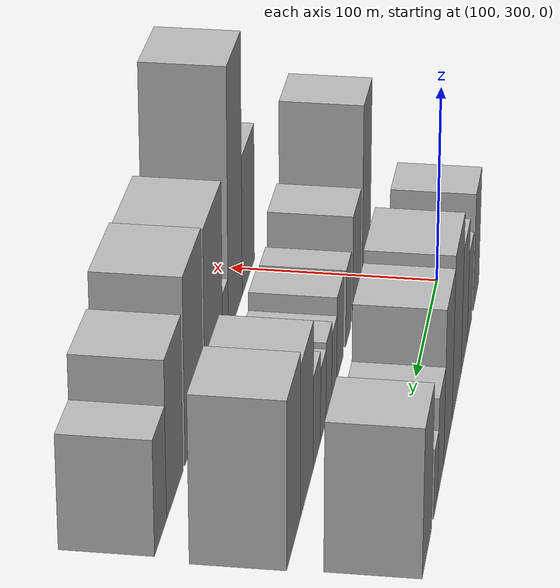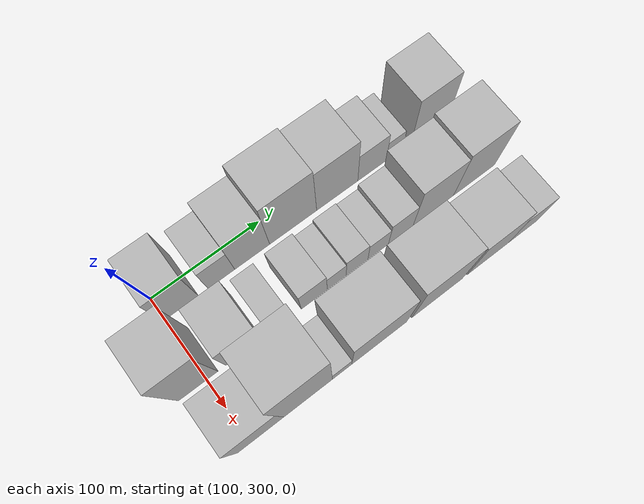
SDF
<sdf version="1.6">
 <world name="default">
  <model name="building_22">
   <static>1</static>
   <pose>100.0000 314.2747 0 0.000000 0.000000 0.000000</pose>
   <link name="link">
    <pose>0 0 30.00 0 0 0</pose>
    <collision name="collision"><geometry><box><size>40.0000 31.3669 60.0000</size></box></geometry></collision>
    <visual name="visual">
     <cast_shadows>0</cast_shadows>
     <geometry><box><size>40.0000 31.3669 60.0000</size></box></geometry>
     <material>
      <script>
       <uri>model://HANNAS_wall/materials/scripts</uri>
       <uri>model://HANNAS_wall/materials/textures</uri>
       <name>vrc/HANNAS_wall</name>
      </script>
     </material>
    </visual>
   </link>
  </model>
  <model name="building_23">
   <static>1</static>
   <pose>100.0000 351.1268 0 0.000000 0.000000 0.000000</pose>
   <link name="link">
    <pose>0 0 22.50 0 0 0</pose>
    <collision name="collision"><geometry><box><size>40.0000 24.3372 45.0000</size></box></geometry></collision>
    <visual name="visual">
     <cast_shadows>0</cast_shadows>
     <geometry><box><size>40.0000 24.3372 45.0000</size></box></geometry>
     <material>
      <script>
       <uri>model://HANNAS_wall/materials/scripts</uri>
       <uri>model://HANNAS_wall/materials/textures</uri>
       <name>vrc/HANNAS_wall</name>
      </script>
     </material>
    </visual>
   </link>
  </model>
  <model name="building_24">
   <static>1</static>
   <pose>100.0000 379.5723 0 0.000000 0.000000 0.000000</pose>
   <link name="link">
    <pose>0 0 31.50 0 0 0</pose>
    <collision name="collision"><geometry><box><size>40.0000 32.5538 63.0000</size></box></geometry></collision>
    <visual name="visual">
     <cast_shadows>0</cast_shadows>
     <geometry><box><size>40.0000 32.5538 63.0000</size></box></geometry>
     <material>
      <script>
       <uri>model://HANNAS_wall/materials/scripts</uri>
       <uri>model://HANNAS_wall/materials/textures</uri>
       <name>vrc/HANNAS_wall</name>
      </script>
     </material>
    </visual>
   </link>
  </model>
  <model name="building_25">
   <static>1</static>
   <pose>100.0000 418.3268 0 0.000000 0.000000 0.000000</pose>
   <link name="link">
    <pose>0 0 40.50 0 0 0</pose>
    <collision name="collision"><geometry><box><size>40.0000 44.9550 81.0000</size></box></geometry></collision>
    <visual name="visual">
     <cast_shadows>0</cast_shadows>
     <geometry><box><size>40.0000 44.9550 81.0000</size></box></geometry>
     <material>
      <script>
       <uri>model://HANNAS_wall/materials/scripts</uri>
       <uri>model://HANNAS_wall/materials/textures</uri>
       <name>vrc/HANNAS_wall</name>
      </script>
     </material>
    </visual>
   </link>
  </model>
  <model name="building_26">
   <static>1</static>
   <pose>100.0000 460.9864 0 0.000000 0.000000 0.000000</pose>
   <link name="link">
    <pose>0 0 37.50 0 0 0</pose>
    <collision name="collision"><geometry><box><size>40.0000 40.3642 75.0000</size></box></geometry></collision>
    <visual name="visual">
     <cast_shadows>0</cast_shadows>
     <geometry><box><size>40.0000 40.3642 75.0000</size></box></geometry>
     <material>
      <script>
       <uri>model://HANNAS_wall/materials/scripts</uri>
       <uri>model://HANNAS_wall/materials/textures</uri>
       <name>vrc/HANNAS_wall</name>
      </script>
     </material>
    </visual>
   </link>
  </model>
  <model name="building_27">
   <static>1</static>
   <pose>100.0000 495.3992 0 0.000000 0.000000 0.000000</pose>
   <link name="link">
    <pose>0 0 24.00 0 0 0</pose>
    <collision name="collision"><geometry><box><size>40.0000 28.4614 48.0000</size></box></geometry></collision>
    <visual name="visual">
     <cast_shadows>0</cast_shadows>
     <geometry><box><size>40.0000 28.4614 48.0000</size></box></geometry>
     <material>
      <script>
       <uri>model://HANNAS_wall/materials/scripts</uri>
       <uri>model://HANNAS_wall/materials/textures</uri>
       <name>vrc/HANNAS_wall</name>
      </script>
     </material>
    </visual>
   </link>
  </model>
  <model name="building_28">
   <static>1</static>
   <pose>100.0000 517.9924 0 0.000000 0.000000 0.000000</pose>
   <link name="link">
    <pose>0 0 16.50 0 0 0</pose>
    <collision name="collision"><geometry><box><size>40.0000 16.7249 33.0000</size></box></geometry></collision>
    <visual name="visual">
     <cast_shadows>0</cast_shadows>
     <geometry><box><size>40.0000 16.7249 33.0000</size></box></geometry>
     <material>
      <script>
       <uri>model://HANNAS_wall/materials/scripts</uri>
       <uri>model://HANNAS_wall/materials/textures</uri>
       <name>vrc/HANNAS_wall</name>
      </script>
     </material>
    </visual>
   </link>
  </model>
  <model name="building_29">
   <static>1</static>
   <pose>100.0000 554.8969 0 0.000000 0.000000 0.000000</pose>
   <link name="link">
    <pose>0 0 34.50 0 0 0</pose>
    <collision name="collision"><geometry><box><size>40.0000 39.0842 69.0000</size></box></geometry></collision>
    <visual name="visual">
     <cast_shadows>0</cast_shadows>
     <geometry><box><size>40.0000 39.0842 69.0000</size></box></geometry>
     <material>
      <script>
       <uri>model://HANNAS_wall/materials/scripts</uri>
       <uri>model://HANNAS_wall/materials/textures</uri>
       <name>vrc/HANNAS_wall</name>
      </script>
     </material>
    </visual>
   </link>
  </model>
  <model name="building_58">
   <static>1</static>
   <pose>155.0000 293.0008 0 0.000000 0.000000 0.000000</pose>
   <link name="link">
    <pose>0 0 46.50 0 0 0</pose>
    <collision name="collision"><geometry><box><size>40.0000 34.3802 93.0000</size></box></geometry></collision>
    <visual name="visual">
     <cast_shadows>0</cast_shadows>
     <geometry><box><size>40.0000 34.3802 93.0000</size></box></geometry>
     <material>
      <script>
       <uri>model://HANNAS_wall/materials/scripts</uri>
       <uri>model://HANNAS_wall/materials/textures</uri>
       <name>vrc/HANNAS_wall</name>
      </script>
     </material>
    </visual>
   </link>
  </model>
  <model name="building_59">
   <static>1</static>
   <pose>155.0000 333.3561 0 0.000000 0.000000 0.000000</pose>
   <link name="link">
    <pose>0 0 27.00 0 0 0</pose>
    <collision name="collision"><geometry><box><size>40.0000 32.3304 54.0000</size></box></geometry></collision>
    <visual name="visual">
     <cast_shadows>0</cast_shadows>
     <geometry><box><size>40.0000 32.3304 54.0000</size></box></geometry>
     <material>
      <script>
       <uri>model://HANNAS_wall/materials/scripts</uri>
       <uri>model://HANNAS_wall/materials/textures</uri>
       <name>vrc/HANNAS_wall</name>
      </script>
     </material>
    </visual>
   </link>
  </model>
  <model name="building_60">
   <static>1</static>
   <pose>155.0000 365.4560 0 0.000000 0.000000 0.000000</pose>
   <link name="link">
    <pose>0 0 19.50 0 0 0</pose>
    <collision name="collision"><geometry><box><size>40.0000 19.8695 39.0000</size></box></geometry></collision>
    <visual name="visual">
     <cast_shadows>0</cast_shadows>
     <geometry><box><size>40.0000 19.8695 39.0000</size></box></geometry>
     <material>
      <script>
       <uri>model://HANNAS_wall/materials/scripts</uri>
       <uri>model://HANNAS_wall/materials/textures</uri>
       <name>vrc/HANNAS_wall</name>
      </script>
     </material>
    </visual>
   </link>
  </model>
  <model name="building_61">
   <static>1</static>
   <pose>155.0000 397.5208 0 0.000000 0.000000 0.000000</pose>
   <link name="link">
    <pose>0 0 21.00 0 0 0</pose>
    <collision name="collision"><geometry><box><size>40.0000 24.2600 42.0000</size></box></geometry></collision>
    <visual name="visual">
     <cast_shadows>0</cast_shadows>
     <geometry><box><size>40.0000 24.2600 42.0000</size></box></geometry>
     <material>
      <script>
       <uri>model://HANNAS_wall/materials/scripts</uri>
       <uri>model://HANNAS_wall/materials/textures</uri>
       <name>vrc/HANNAS_wall</name>
      </script>
     </material>
    </visual>
   </link>
  </model>
  <model name="building_62">
   <static>1</static>
   <pose>155.0000 418.5373 0 0.000000 0.000000 0.000000</pose>
   <link name="link">
    <pose>0 0 16.50 0 0 0</pose>
    <collision name="collision"><geometry><box><size>40.0000 17.7729 33.0000</size></box></geometry></collision>
    <visual name="visual">
     <cast_shadows>0</cast_shadows>
     <geometry><box><size>40.0000 17.7729 33.0000</size></box></geometry>
     <material>
      <script>
       <uri>model://HANNAS_wall/materials/scripts</uri>
       <uri>model://HANNAS_wall/materials/textures</uri>
       <name>vrc/HANNAS_wall</name>
      </script>
     </material>
    </visual>
   </link>
  </model>
  <model name="building_63">
   <static>1</static>
   <pose>155.0000 437.8290 0 0.000000 0.000000 0.000000</pose>
   <link name="link">
    <pose>0 0 19.50 0 0 0</pose>
    <collision name="collision"><geometry><box><size>40.0000 20.8105 39.0000</size></box></geometry></collision>
    <visual name="visual">
     <cast_shadows>0</cast_shadows>
     <geometry><box><size>40.0000 20.8105 39.0000</size></box></geometry>
     <material>
      <script>
       <uri>model://HANNAS_wall/materials/scripts</uri>
       <uri>model://HANNAS_wall/materials/textures</uri>
       <name>vrc/HANNAS_wall</name>
      </script>
     </material>
    </visual>
   </link>
  </model>
  <model name="building_64">
   <static>1</static>
   <pose>155.0000 458.1933 0 0.000000 0.000000 0.000000</pose>
   <link name="link">
    <pose>0 0 18.00 0 0 0</pose>
    <collision name="collision"><geometry><box><size>40.0000 19.9182 36.0000</size></box></geometry></collision>
    <visual name="visual">
     <cast_shadows>0</cast_shadows>
     <geometry><box><size>40.0000 19.9182 36.0000</size></box></geometry>
     <material>
      <script>
       <uri>model://HANNAS_wall/materials/scripts</uri>
       <uri>model://HANNAS_wall/materials/textures</uri>
       <name>vrc/HANNAS_wall</name>
      </script>
     </material>
    </visual>
   </link>
  </model>
  <model name="building_65">
   <static>1</static>
   <pose>155.0000 480.2966 0 0.000000 0.000000 0.000000</pose>
   <link name="link">
    <pose>0 0 22.50 0 0 0</pose>
    <collision name="collision"><geometry><box><size>40.0000 24.2884 45.0000</size></box></geometry></collision>
    <visual name="visual">
     <cast_shadows>0</cast_shadows>
     <geometry><box><size>40.0000 24.2884 45.0000</size></box></geometry>
     <material>
      <script>
       <uri>model://HANNAS_wall/materials/scripts</uri>
       <uri>model://HANNAS_wall/materials/textures</uri>
       <name>vrc/HANNAS_wall</name>
      </script>
     </material>
    </visual>
   </link>
  </model>
  <model name="building_66">
   <static>1</static>
   <pose>155.0000 512.7795 0 0.000000 0.000000 0.000000</pose>
   <link name="link">
    <pose>0 0 36.00 0 0 0</pose>
    <collision name="collision"><geometry><box><size>40.0000 40.6774 72.0000</size></box></geometry></collision>
    <visual name="visual">
     <cast_shadows>0</cast_shadows>
     <geometry><box><size>40.0000 40.6774 72.0000</size></box></geometry>
     <material>
      <script>
       <uri>model://HANNAS_wall/materials/scripts</uri>
       <uri>model://HANNAS_wall/materials/textures</uri>
       <name>vrc/HANNAS_wall</name>
      </script>
     </material>
    </visual>
   </link>
  </model>
  <model name="building_67">
   <static>1</static>
   <pose>155.0000 554.3783 0 0.000000 0.000000 0.000000</pose>
   <link name="link">
    <pose>0 0 39.00 0 0 0</pose>
    <collision name="collision"><geometry><box><size>40.0000 42.5201 78.0000</size></box></geometry></collision>
    <visual name="visual">
     <cast_shadows>0</cast_shadows>
     <geometry><box><size>40.0000 42.5201 78.0000</size></box></geometry>
     <material>
      <script>
       <uri>model://HANNAS_wall/materials/scripts</uri>
       <uri>model://HANNAS_wall/materials/textures</uri>
       <name>vrc/HANNAS_wall</name>
      </script>
     </material>
    </visual>
   </link>
  </model>
  <model name="building_92">
   <static>1</static>
   <pose>210.0000 309.2860 0 0.000000 0.000000 0.000000</pose>
   <link name="link">
    <pose>0 0 36.00 0 0 0</pose>
    <collision name="collision"><geometry><box><size>40.0000 40.4829 72.0000</size></box></geometry></collision>
    <visual name="visual">
     <cast_shadows>0</cast_shadows>
     <geometry><box><size>40.0000 40.4829 72.0000</size></box></geometry>
     <material>
      <script>
       <uri>model://HANNAS_wall/materials/scripts</uri>
       <uri>model://HANNAS_wall/materials/textures</uri>
       <name>vrc/HANNAS_wall</name>
      </script>
     </material>
    </visual>
   </link>
  </model>
  <model name="building_93">
   <static>1</static>
   <pose>210.0000 351.1900 0 0.000000 0.000000 0.000000</pose>
   <link name="link">
    <pose>0 0 67.50 0 0 0</pose>
    <collision name="collision"><geometry><box><size>40.0000 43.3250 135.0000</size></box></geometry></collision>
    <visual name="visual">
     <cast_shadows>0</cast_shadows>
     <geometry><box><size>40.0000 43.3250 135.0000</size></box></geometry>
     <material>
      <script>
       <uri>model://HANNAS_wall/materials/scripts</uri>
       <uri>model://HANNAS_wall/materials/textures</uri>
       <name>vrc/HANNAS_wall</name>
      </script>
     </material>
    </visual>
   </link>
  </model>
  <model name="building_94">
   <static>1</static>
   <pose>210.0000 381.5147 0 0.000000 0.000000 0.000000</pose>
   <link name="link">
    <pose>0 0 15.00 0 0 0</pose>
    <collision name="collision"><geometry><box><size>40.0000 17.3245 30.0000</size></box></geometry></collision>
    <visual name="visual">
     <cast_shadows>0</cast_shadows>
     <geometry><box><size>40.0000 17.3245 30.0000</size></box></geometry>
     <material>
      <script>
       <uri>model://HANNAS_wall/materials/scripts</uri>
       <uri>model://HANNAS_wall/materials/textures</uri>
       <name>vrc/HANNAS_wall</name>
      </script>
     </material>
    </visual>
   </link>
  </model>
  <model name="building_95">
   <static>1</static>
   <pose>210.0000 415.9490 0 0.000000 0.000000 0.000000</pose>
   <link name="link">
    <pose>0 0 43.50 0 0 0</pose>
    <collision name="collision"><geometry><box><size>40.0000 51.5440 87.0000</size></box></geometry></collision>
    <visual name="visual">
     <cast_shadows>0</cast_shadows>
     <geometry><box><size>40.0000 51.5440 87.0000</size></box></geometry>
     <material>
      <script>
       <uri>model://HANNAS_wall/materials/scripts</uri>
       <uri>model://HANNAS_wall/materials/textures</uri>
       <name>vrc/HANNAS_wall</name>
      </script>
     </material>
    </visual>
   </link>
  </model>
  <model name="building_96">
   <static>1</static>
   <pose>210.0000 471.1602 0 0.000000 0.000000 0.000000</pose>
   <link name="link">
    <pose>0 0 45.00 0 0 0</pose>
    <collision name="collision"><geometry><box><size>40.0000 48.8784 90.0000</size></box></geometry></collision>
    <visual name="visual">
     <cast_shadows>0</cast_shadows>
     <geometry><box><size>40.0000 48.8784 90.0000</size></box></geometry>
     <material>
      <script>
       <uri>model://HANNAS_wall/materials/scripts</uri>
       <uri>model://HANNAS_wall/materials/textures</uri>
       <name>vrc/HANNAS_wall</name>
      </script>
     </material>
    </visual>
   </link>
  </model>
  <model name="building_97">
   <static>1</static>
   <pose>210.0000 521.4623 0 0.000000 0.000000 0.000000</pose>
   <link name="link">
    <pose>0 0 37.50 0 0 0</pose>
    <collision name="collision"><geometry><box><size>40.0000 41.7258 75.0000</size></box></geometry></collision>
    <visual name="visual">
     <cast_shadows>0</cast_shadows>
     <geometry><box><size>40.0000 41.7258 75.0000</size></box></geometry>
     <material>
      <script>
       <uri>model://HANNAS_wall/materials/scripts</uri>
       <uri>model://HANNAS_wall/materials/textures</uri>
       <name>vrc/HANNAS_wall</name>
      </script>
     </material>
    </visual>
   </link>
  </model>
  <model name="building_98">
   <static>1</static>
   <pose>210.0000 557.0612 0 0.000000 0.000000 0.000000</pose>
   <link name="link">
    <pose>0 0 27.00 0 0 0</pose>
    <collision name="collision"><geometry><box><size>40.0000 29.4720 54.0000</size></box></geometry></collision>
    <visual name="visual">
     <cast_shadows>0</cast_shadows>
     <geometry><box><size>40.0000 29.4720 54.0000</size></box></geometry>
     <material>
      <script>
       <uri>model://HANNAS_wall/materials/scripts</uri>
       <uri>model://HANNAS_wall/materials/textures</uri>
       <name>vrc/HANNAS_wall</name>
      </script>
     </material>
    </visual>
   </link>
  </model>
 </world>
</sdf>
